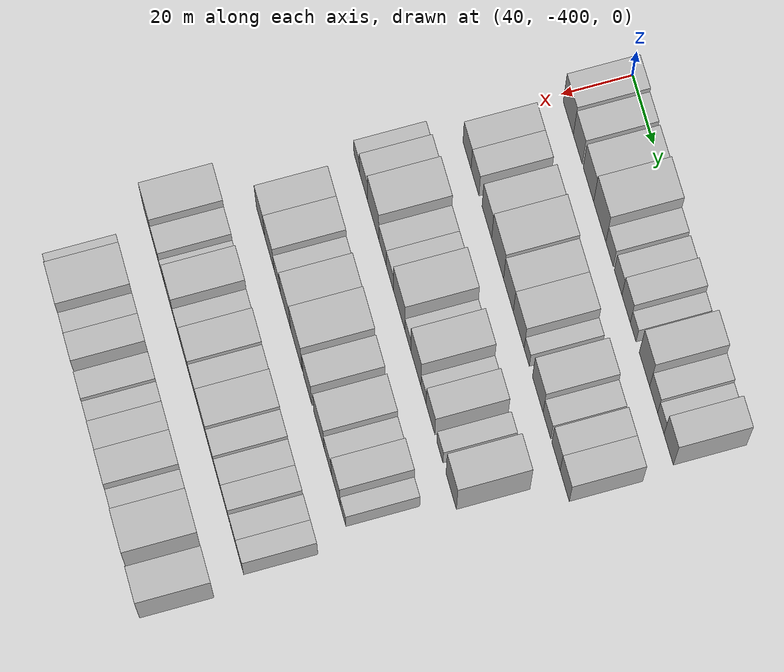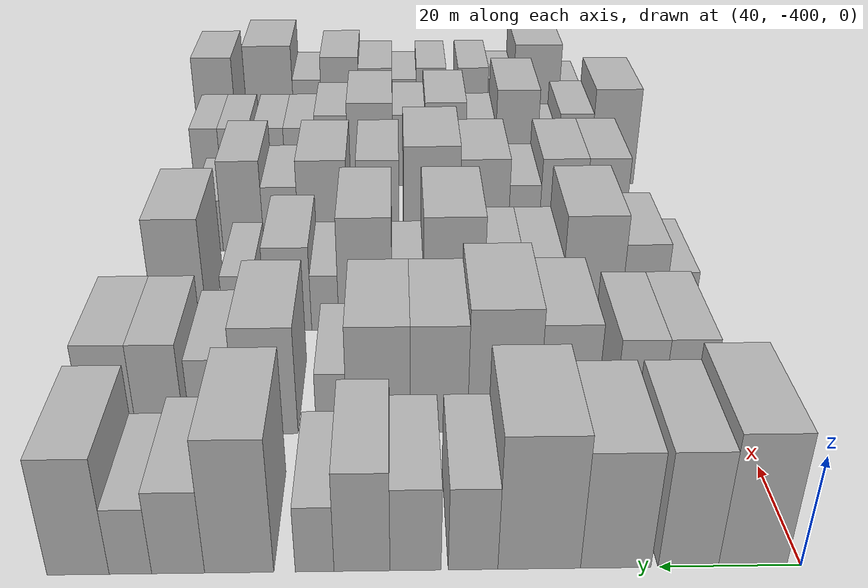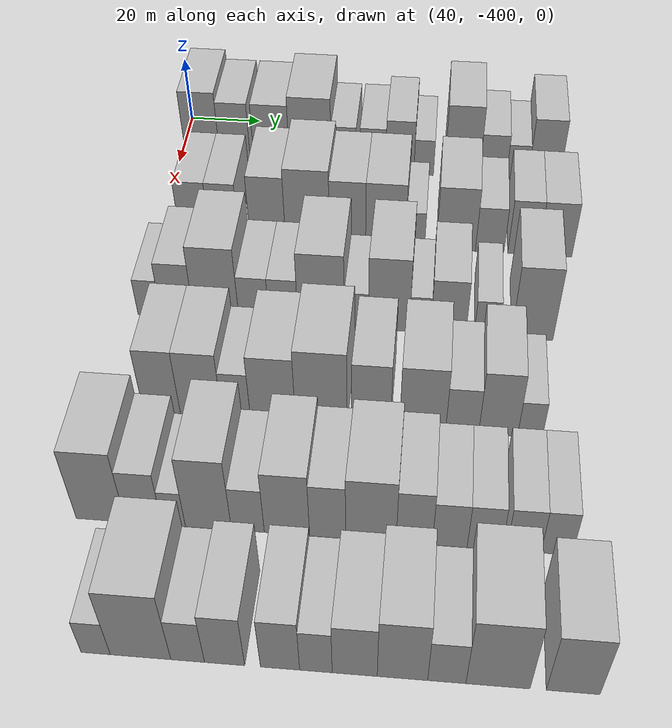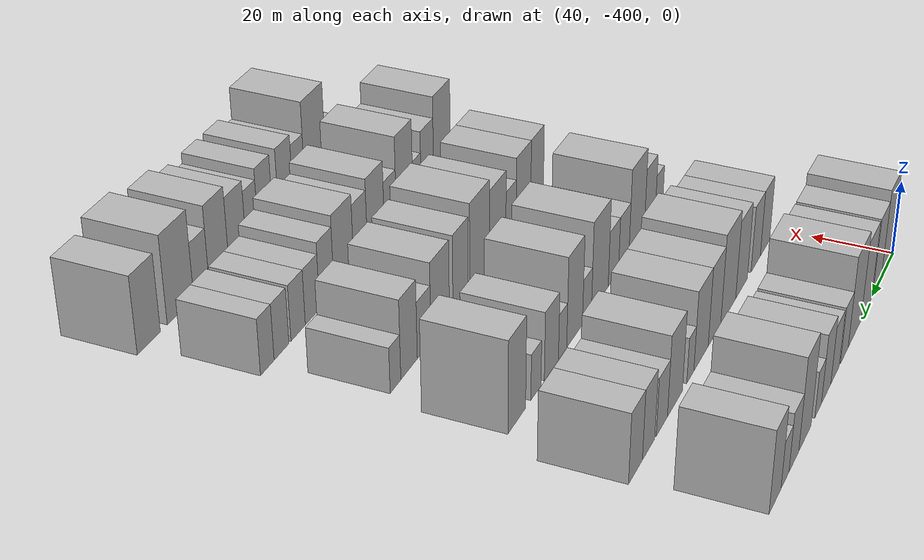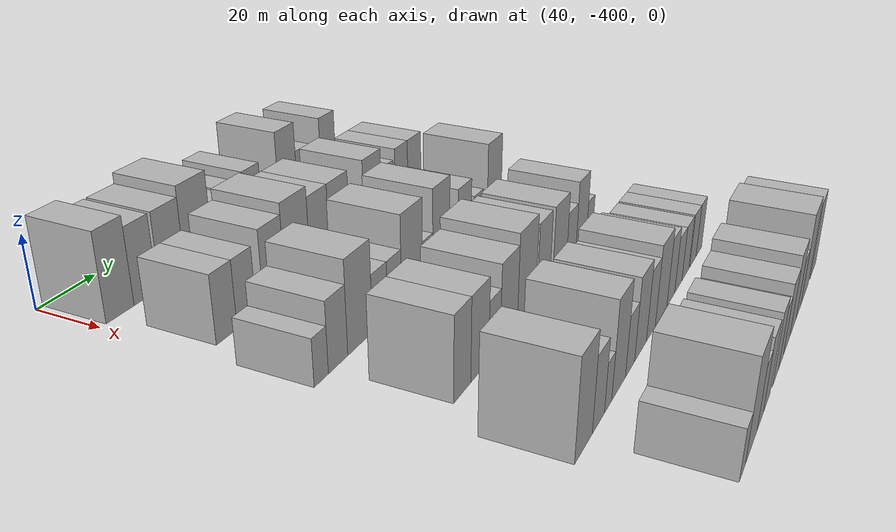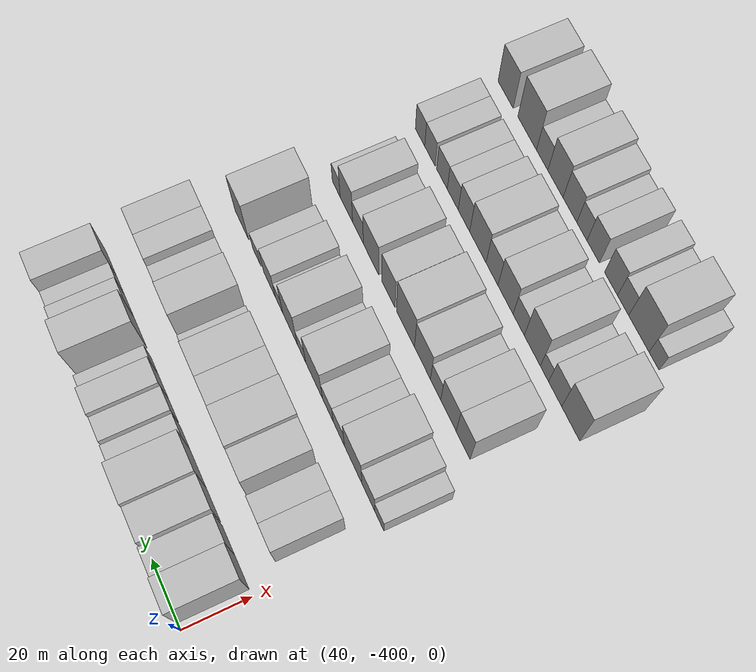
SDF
<sdf version="1.6">
 <world name="default">
  <model name="building_14">
   <static>1</static>
   <pose>50.0000 -393.1238 0 0.000000 0.000000 0.000000</pose>
   <link name="link">
    <pose>0 0 12.00 0 0 0</pose>
    <collision name="collision"><geometry><box><size>20.0000 9.6778 24.0000</size></box></geometry></collision>
    <visual name="visual">
     <cast_shadows>0</cast_shadows>
     <geometry><box><size>20.0000 9.6778 24.0000</size></box></geometry>
     <material>
      <script>
       <uri>model://HANNAS_wall/materials/scripts</uri>
       <uri>model://HANNAS_wall/materials/textures</uri>
       <name>vrc/HANNAS_wall</name>
      </script>
     </material>
    </visual>
   </link>
  </model>
  <model name="building_15">
   <static>1</static>
   <pose>50.0000 -384.0460 0 0.000000 0.000000 0.000000</pose>
   <link name="link">
    <pose>0 0 10.50 0 0 0</pose>
    <collision name="collision"><geometry><box><size>20.0000 8.4777 21.0000</size></box></geometry></collision>
    <visual name="visual">
     <cast_shadows>0</cast_shadows>
     <geometry><box><size>20.0000 8.4777 21.0000</size></box></geometry>
     <material>
      <script>
       <uri>model://HANNAS_wall/materials/scripts</uri>
       <uri>model://HANNAS_wall/materials/textures</uri>
       <name>vrc/HANNAS_wall</name>
      </script>
     </material>
    </visual>
   </link>
  </model>
  <model name="building_16">
   <static>1</static>
   <pose>50.0000 -373.8472 0 0.000000 0.000000 0.000000</pose>
   <link name="link">
    <pose>0 0 10.50 0 0 0</pose>
    <collision name="collision"><geometry><box><size>20.0000 9.9200 21.0000</size></box></geometry></collision>
    <visual name="visual">
     <cast_shadows>0</cast_shadows>
     <geometry><box><size>20.0000 9.9200 21.0000</size></box></geometry>
     <material>
      <script>
       <uri>model://HANNAS_wall/materials/scripts</uri>
       <uri>model://HANNAS_wall/materials/textures</uri>
       <name>vrc/HANNAS_wall</name>
      </script>
     </material>
    </visual>
   </link>
  </model>
  <model name="building_17">
   <static>1</static>
   <pose>50.0000 -363.0854 0 0.000000 0.000000 0.000000</pose>
   <link name="link">
    <pose>0 0 12.00 0 0 0</pose>
    <collision name="collision"><geometry><box><size>20.0000 11.6037 24.0000</size></box></geometry></collision>
    <visual name="visual">
     <cast_shadows>0</cast_shadows>
     <geometry><box><size>20.0000 11.6037 24.0000</size></box></geometry>
     <material>
      <script>
       <uri>model://HANNAS_wall/materials/scripts</uri>
       <uri>model://HANNAS_wall/materials/textures</uri>
       <name>vrc/HANNAS_wall</name>
      </script>
     </material>
    </visual>
   </link>
  </model>
  <model name="building_18">
   <static>1</static>
   <pose>50.0000 -353.8108 0 0.000000 0.000000 0.000000</pose>
   <link name="link">
    <pose>0 0 7.50 0 0 0</pose>
    <collision name="collision"><geometry><box><size>20.0000 6.9455 15.0000</size></box></geometry></collision>
    <visual name="visual">
     <cast_shadows>0</cast_shadows>
     <geometry><box><size>20.0000 6.9455 15.0000</size></box></geometry>
     <material>
      <script>
       <uri>model://HANNAS_wall/materials/scripts</uri>
       <uri>model://HANNAS_wall/materials/textures</uri>
       <name>vrc/HANNAS_wall</name>
      </script>
     </material>
    </visual>
   </link>
  </model>
  <model name="building_19">
   <static>1</static>
   <pose>50.0000 -345.7637 0 0.000000 0.000000 0.000000</pose>
   <link name="link">
    <pose>0 0 7.50 0 0 0</pose>
    <collision name="collision"><geometry><box><size>20.0000 7.1486 15.0000</size></box></geometry></collision>
    <visual name="visual">
     <cast_shadows>0</cast_shadows>
     <geometry><box><size>20.0000 7.1486 15.0000</size></box></geometry>
     <material>
      <script>
       <uri>model://HANNAS_wall/materials/scripts</uri>
       <uri>model://HANNAS_wall/materials/textures</uri>
       <name>vrc/HANNAS_wall</name>
      </script>
     </material>
    </visual>
   </link>
  </model>
  <model name="building_20">
   <static>1</static>
   <pose>50.0000 -338.2811 0 0.000000 0.000000 0.000000</pose>
   <link name="link">
    <pose>0 0 9.00 0 0 0</pose>
    <collision name="collision"><geometry><box><size>20.0000 7.8166 18.0000</size></box></geometry></collision>
    <visual name="visual">
     <cast_shadows>0</cast_shadows>
     <geometry><box><size>20.0000 7.8166 18.0000</size></box></geometry>
     <material>
      <script>
       <uri>model://HANNAS_wall/materials/scripts</uri>
       <uri>model://HANNAS_wall/materials/textures</uri>
       <name>vrc/HANNAS_wall</name>
      </script>
     </material>
    </visual>
   </link>
  </model>
  <model name="building_21">
   <static>1</static>
   <pose>50.0000 -331.6705 0 0.000000 0.000000 0.000000</pose>
   <link name="link">
    <pose>0 0 6.00 0 0 0</pose>
    <collision name="collision"><geometry><box><size>20.0000 5.4046 12.0000</size></box></geometry></collision>
    <visual name="visual">
     <cast_shadows>0</cast_shadows>
     <geometry><box><size>20.0000 5.4046 12.0000</size></box></geometry>
     <material>
      <script>
       <uri>model://HANNAS_wall/materials/scripts</uri>
       <uri>model://HANNAS_wall/materials/textures</uri>
       <name>vrc/HANNAS_wall</name>
      </script>
     </material>
    </visual>
   </link>
  </model>
  <model name="building_22">
   <static>1</static>
   <pose>50.0000 -321.1585 0 0.000000 0.000000 0.000000</pose>
   <link name="link">
    <pose>0 0 12.00 0 0 0</pose>
    <collision name="collision"><geometry><box><size>20.0000 9.6194 24.0000</size></box></geometry></collision>
    <visual name="visual">
     <cast_shadows>0</cast_shadows>
     <geometry><box><size>20.0000 9.6194 24.0000</size></box></geometry>
     <material>
      <script>
       <uri>model://HANNAS_wall/materials/scripts</uri>
       <uri>model://HANNAS_wall/materials/textures</uri>
       <name>vrc/HANNAS_wall</name>
      </script>
     </material>
    </visual>
   </link>
  </model>
  <model name="building_23">
   <static>1</static>
   <pose>50.0000 -312.6653 0 0.000000 0.000000 0.000000</pose>
   <link name="link">
    <pose>0 0 7.50 0 0 0</pose>
    <collision name="collision"><geometry><box><size>20.0000 7.3670 15.0000</size></box></geometry></collision>
    <visual name="visual">
     <cast_shadows>0</cast_shadows>
     <geometry><box><size>20.0000 7.3670 15.0000</size></box></geometry>
     <material>
      <script>
       <uri>model://HANNAS_wall/materials/scripts</uri>
       <uri>model://HANNAS_wall/materials/textures</uri>
       <name>vrc/HANNAS_wall</name>
      </script>
     </material>
    </visual>
   </link>
  </model>
  <model name="building_24">
   <static>1</static>
   <pose>50.0000 -306.0284 0 0.000000 0.000000 0.000000</pose>
   <link name="link">
    <pose>0 0 6.00 0 0 0</pose>
    <collision name="collision"><geometry><box><size>20.0000 5.9067 12.0000</size></box></geometry></collision>
    <visual name="visual">
     <cast_shadows>0</cast_shadows>
     <geometry><box><size>20.0000 5.9067 12.0000</size></box></geometry>
     <material>
      <script>
       <uri>model://HANNAS_wall/materials/scripts</uri>
       <uri>model://HANNAS_wall/materials/textures</uri>
       <name>vrc/HANNAS_wall</name>
      </script>
     </material>
    </visual>
   </link>
  </model>
  <model name="building_25">
   <static>1</static>
   <pose>50.0000 -298.7653 0 0.000000 0.000000 0.000000</pose>
   <link name="link">
    <pose>0 0 10.50 0 0 0</pose>
    <collision name="collision"><geometry><box><size>20.0000 8.6196 21.0000</size></box></geometry></collision>
    <visual name="visual">
     <cast_shadows>0</cast_shadows>
     <geometry><box><size>20.0000 8.6196 21.0000</size></box></geometry>
     <material>
      <script>
       <uri>model://HANNAS_wall/materials/scripts</uri>
       <uri>model://HANNAS_wall/materials/textures</uri>
       <name>vrc/HANNAS_wall</name>
      </script>
     </material>
    </visual>
   </link>
  </model>
  <model name="building_132">
   <static>1</static>
   <pose>79.0000 -390.3582 0 0.000000 0.000000 0.000000</pose>
   <link name="link">
    <pose>0 0 9.00 0 0 0</pose>
    <collision name="collision"><geometry><box><size>20.0000 7.9021 18.0000</size></box></geometry></collision>
    <visual name="visual">
     <cast_shadows>0</cast_shadows>
     <geometry><box><size>20.0000 7.9021 18.0000</size></box></geometry>
     <material>
      <script>
       <uri>model://HANNAS_wall/materials/scripts</uri>
       <uri>model://HANNAS_wall/materials/textures</uri>
       <name>vrc/HANNAS_wall</name>
      </script>
     </material>
    </visual>
   </link>
  </model>
  <model name="building_133">
   <static>1</static>
   <pose>79.0000 -382.5551 0 0.000000 0.000000 0.000000</pose>
   <link name="link">
    <pose>0 0 9.00 0 0 0</pose>
    <collision name="collision"><geometry><box><size>20.0000 7.7041 18.0000</size></box></geometry></collision>
    <visual name="visual">
     <cast_shadows>0</cast_shadows>
     <geometry><box><size>20.0000 7.7041 18.0000</size></box></geometry>
     <material>
      <script>
       <uri>model://HANNAS_wall/materials/scripts</uri>
       <uri>model://HANNAS_wall/materials/textures</uri>
       <name>vrc/HANNAS_wall</name>
      </script>
     </material>
    </visual>
   </link>
  </model>
  <model name="building_134">
   <static>1</static>
   <pose>79.0000 -371.0360 0 0.000000 0.000000 0.000000</pose>
   <link name="link">
    <pose>0 0 10.50 0 0 0</pose>
    <collision name="collision"><geometry><box><size>20.0000 9.3340 21.0000</size></box></geometry></collision>
    <visual name="visual">
     <cast_shadows>0</cast_shadows>
     <geometry><box><size>20.0000 9.3340 21.0000</size></box></geometry>
     <material>
      <script>
       <uri>model://HANNAS_wall/materials/scripts</uri>
       <uri>model://HANNAS_wall/materials/textures</uri>
       <name>vrc/HANNAS_wall</name>
      </script>
     </material>
    </visual>
   </link>
  </model>
  <model name="building_135">
   <static>1</static>
   <pose>79.0000 -360.6052 0 0.000000 0.000000 0.000000</pose>
   <link name="link">
    <pose>0 0 12.00 0 0 0</pose>
    <collision name="collision"><geometry><box><size>20.0000 11.5275 24.0000</size></box></geometry></collision>
    <visual name="visual">
     <cast_shadows>0</cast_shadows>
     <geometry><box><size>20.0000 11.5275 24.0000</size></box></geometry>
     <material>
      <script>
       <uri>model://HANNAS_wall/materials/scripts</uri>
       <uri>model://HANNAS_wall/materials/textures</uri>
       <name>vrc/HANNAS_wall</name>
      </script>
     </material>
    </visual>
   </link>
  </model>
  <model name="building_136">
   <static>1</static>
   <pose>79.0000 -350.1596 0 0.000000 0.000000 0.000000</pose>
   <link name="link">
    <pose>0 0 10.50 0 0 0</pose>
    <collision name="collision"><geometry><box><size>20.0000 9.3638 21.0000</size></box></geometry></collision>
    <visual name="visual">
     <cast_shadows>0</cast_shadows>
     <geometry><box><size>20.0000 9.3638 21.0000</size></box></geometry>
     <material>
      <script>
       <uri>model://HANNAS_wall/materials/scripts</uri>
       <uri>model://HANNAS_wall/materials/textures</uri>
       <name>vrc/HANNAS_wall</name>
      </script>
     </material>
    </visual>
   </link>
  </model>
  <model name="building_137">
   <static>1</static>
   <pose>79.0000 -340.3080 0 0.000000 0.000000 0.000000</pose>
   <link name="link">
    <pose>0 0 10.50 0 0 0</pose>
    <collision name="collision"><geometry><box><size>20.0000 10.3393 21.0000</size></box></geometry></collision>
    <visual name="visual">
     <cast_shadows>0</cast_shadows>
     <geometry><box><size>20.0000 10.3393 21.0000</size></box></geometry>
     <material>
      <script>
       <uri>model://HANNAS_wall/materials/scripts</uri>
       <uri>model://HANNAS_wall/materials/textures</uri>
       <name>vrc/HANNAS_wall</name>
      </script>
     </material>
    </visual>
   </link>
  </model>
  <model name="building_138">
   <static>1</static>
   <pose>79.0000 -332.6651 0 0.000000 0.000000 0.000000</pose>
   <link name="link">
    <pose>0 0 6.00 0 0 0</pose>
    <collision name="collision"><geometry><box><size>20.0000 4.9464 12.0000</size></box></geometry></collision>
    <visual name="visual">
     <cast_shadows>0</cast_shadows>
     <geometry><box><size>20.0000 4.9464 12.0000</size></box></geometry>
     <material>
      <script>
       <uri>model://HANNAS_wall/materials/scripts</uri>
       <uri>model://HANNAS_wall/materials/textures</uri>
       <name>vrc/HANNAS_wall</name>
      </script>
     </material>
    </visual>
   </link>
  </model>
  <model name="building_139">
   <static>1</static>
   <pose>79.0000 -322.1463 0 0.000000 0.000000 0.000000</pose>
   <link name="link">
    <pose>0 0 10.50 0 0 0</pose>
    <collision name="collision"><geometry><box><size>20.0000 10.0912 21.0000</size></box></geometry></collision>
    <visual name="visual">
     <cast_shadows>0</cast_shadows>
     <geometry><box><size>20.0000 10.0912 21.0000</size></box></geometry>
     <material>
      <script>
       <uri>model://HANNAS_wall/materials/scripts</uri>
       <uri>model://HANNAS_wall/materials/textures</uri>
       <name>vrc/HANNAS_wall</name>
      </script>
     </material>
    </visual>
   </link>
  </model>
  <model name="building_140">
   <static>1</static>
   <pose>79.0000 -313.4444 0 0.000000 0.000000 0.000000</pose>
   <link name="link">
    <pose>0 0 7.50 0 0 0</pose>
    <collision name="collision"><geometry><box><size>20.0000 7.3126 15.0000</size></box></geometry></collision>
    <visual name="visual">
     <cast_shadows>0</cast_shadows>
     <geometry><box><size>20.0000 7.3126 15.0000</size></box></geometry>
     <material>
      <script>
       <uri>model://HANNAS_wall/materials/scripts</uri>
       <uri>model://HANNAS_wall/materials/textures</uri>
       <name>vrc/HANNAS_wall</name>
      </script>
     </material>
    </visual>
   </link>
  </model>
  <model name="building_141">
   <static>1</static>
   <pose>79.0000 -304.8886 0 0.000000 0.000000 0.000000</pose>
   <link name="link">
    <pose>0 0 9.00 0 0 0</pose>
    <collision name="collision"><geometry><box><size>20.0000 7.7990 18.0000</size></box></geometry></collision>
    <visual name="visual">
     <cast_shadows>0</cast_shadows>
     <geometry><box><size>20.0000 7.7990 18.0000</size></box></geometry>
     <material>
      <script>
       <uri>model://HANNAS_wall/materials/scripts</uri>
       <uri>model://HANNAS_wall/materials/textures</uri>
       <name>vrc/HANNAS_wall</name>
      </script>
     </material>
    </visual>
   </link>
  </model>
  <model name="building_142">
   <static>1</static>
   <pose>79.0000 -296.7094 0 0.000000 0.000000 0.000000</pose>
   <link name="link">
    <pose>0 0 9.00 0 0 0</pose>
    <collision name="collision"><geometry><box><size>20.0000 8.5593 18.0000</size></box></geometry></collision>
    <visual name="visual">
     <cast_shadows>0</cast_shadows>
     <geometry><box><size>20.0000 8.5593 18.0000</size></box></geometry>
     <material>
      <script>
       <uri>model://HANNAS_wall/materials/scripts</uri>
       <uri>model://HANNAS_wall/materials/textures</uri>
       <name>vrc/HANNAS_wall</name>
      </script>
     </material>
    </visual>
   </link>
  </model>
  <model name="building_243">
   <static>1</static>
   <pose>108.0000 -396.1447 0 0.000000 0.000000 0.000000</pose>
   <link name="link">
    <pose>0 0 6.00 0 0 0</pose>
    <collision name="collision"><geometry><box><size>20.0000 5.7117 12.0000</size></box></geometry></collision>
    <visual name="visual">
     <cast_shadows>0</cast_shadows>
     <geometry><box><size>20.0000 5.7117 12.0000</size></box></geometry>
     <material>
      <script>
       <uri>model://HANNAS_wall/materials/scripts</uri>
       <uri>model://HANNAS_wall/materials/textures</uri>
       <name>vrc/HANNAS_wall</name>
      </script>
     </material>
    </visual>
   </link>
  </model>
  <model name="building_244">
   <static>1</static>
   <pose>108.0000 -389.2160 0 0.000000 0.000000 0.000000</pose>
   <link name="link">
    <pose>0 0 9.00 0 0 0</pose>
    <collision name="collision"><geometry><box><size>20.0000 8.1458 18.0000</size></box></geometry></collision>
    <visual name="visual">
     <cast_shadows>0</cast_shadows>
     <geometry><box><size>20.0000 8.1458 18.0000</size></box></geometry>
     <material>
      <script>
       <uri>model://HANNAS_wall/materials/scripts</uri>
       <uri>model://HANNAS_wall/materials/textures</uri>
       <name>vrc/HANNAS_wall</name>
      </script>
     </material>
    </visual>
   </link>
  </model>
  <model name="building_245">
   <static>1</static>
   <pose>108.0000 -379.5825 0 0.000000 0.000000 0.000000</pose>
   <link name="link">
    <pose>0 0 12.00 0 0 0</pose>
    <collision name="collision"><geometry><box><size>20.0000 11.1211 24.0000</size></box></geometry></collision>
    <visual name="visual">
     <cast_shadows>0</cast_shadows>
     <geometry><box><size>20.0000 11.1211 24.0000</size></box></geometry>
     <material>
      <script>
       <uri>model://HANNAS_wall/materials/scripts</uri>
       <uri>model://HANNAS_wall/materials/textures</uri>
       <name>vrc/HANNAS_wall</name>
      </script>
     </material>
    </visual>
   </link>
  </model>
  <model name="building_246">
   <static>1</static>
   <pose>108.0000 -370.3737 0 0.000000 0.000000 0.000000</pose>
   <link name="link">
    <pose>0 0 7.50 0 0 0</pose>
    <collision name="collision"><geometry><box><size>20.0000 7.2964 15.0000</size></box></geometry></collision>
    <visual name="visual">
     <cast_shadows>0</cast_shadows>
     <geometry><box><size>20.0000 7.2964 15.0000</size></box></geometry>
     <material>
      <script>
       <uri>model://HANNAS_wall/materials/scripts</uri>
       <uri>model://HANNAS_wall/materials/textures</uri>
       <name>vrc/HANNAS_wall</name>
      </script>
     </material>
    </visual>
   </link>
  </model>
  <model name="building_247">
   <static>1</static>
   <pose>108.0000 -363.1822 0 0.000000 0.000000 0.000000</pose>
   <link name="link">
    <pose>0 0 7.50 0 0 0</pose>
    <collision name="collision"><geometry><box><size>20.0000 7.0866 15.0000</size></box></geometry></collision>
    <visual name="visual">
     <cast_shadows>0</cast_shadows>
     <geometry><box><size>20.0000 7.0866 15.0000</size></box></geometry>
     <material>
      <script>
       <uri>model://HANNAS_wall/materials/scripts</uri>
       <uri>model://HANNAS_wall/materials/textures</uri>
       <name>vrc/HANNAS_wall</name>
      </script>
     </material>
    </visual>
   </link>
  </model>
  <model name="building_248">
   <static>1</static>
   <pose>108.0000 -354.0282 0 0.000000 0.000000 0.000000</pose>
   <link name="link">
    <pose>0 0 12.00 0 0 0</pose>
    <collision name="collision"><geometry><box><size>20.0000 11.2215 24.0000</size></box></geometry></collision>
    <visual name="visual">
     <cast_shadows>0</cast_shadows>
     <geometry><box><size>20.0000 11.2215 24.0000</size></box></geometry>
     <material>
      <script>
       <uri>model://HANNAS_wall/materials/scripts</uri>
       <uri>model://HANNAS_wall/materials/textures</uri>
       <name>vrc/HANNAS_wall</name>
      </script>
     </material>
    </visual>
   </link>
  </model>
  <model name="building_249">
   <static>1</static>
   <pose>108.0000 -345.5084 0 0.000000 0.000000 0.000000</pose>
   <link name="link">
    <pose>0 0 6.00 0 0 0</pose>
    <collision name="collision"><geometry><box><size>20.0000 5.8181 12.0000</size></box></geometry></collision>
    <visual name="visual">
     <cast_shadows>0</cast_shadows>
     <geometry><box><size>20.0000 5.8181 12.0000</size></box></geometry>
     <material>
      <script>
       <uri>model://HANNAS_wall/materials/scripts</uri>
       <uri>model://HANNAS_wall/materials/textures</uri>
       <name>vrc/HANNAS_wall</name>
      </script>
     </material>
    </visual>
   </link>
  </model>
  <model name="building_250">
   <static>1</static>
   <pose>108.0000 -337.6272 0 0.000000 0.000000 0.000000</pose>
   <link name="link">
    <pose>0 0 12.00 0 0 0</pose>
    <collision name="collision"><geometry><box><size>20.0000 9.9443 24.0000</size></box></geometry></collision>
    <visual name="visual">
     <cast_shadows>0</cast_shadows>
     <geometry><box><size>20.0000 9.9443 24.0000</size></box></geometry>
     <material>
      <script>
       <uri>model://HANNAS_wall/materials/scripts</uri>
       <uri>model://HANNAS_wall/materials/textures</uri>
       <name>vrc/HANNAS_wall</name>
      </script>
     </material>
    </visual>
   </link>
  </model>
  <model name="building_251">
   <static>1</static>
   <pose>108.0000 -330.1143 0 0.000000 0.000000 0.000000</pose>
   <link name="link">
    <pose>0 0 6.00 0 0 0</pose>
    <collision name="collision"><geometry><box><size>20.0000 5.0816 12.0000</size></box></geometry></collision>
    <visual name="visual">
     <cast_shadows>0</cast_shadows>
     <geometry><box><size>20.0000 5.0816 12.0000</size></box></geometry>
     <material>
      <script>
       <uri>model://HANNAS_wall/materials/scripts</uri>
       <uri>model://HANNAS_wall/materials/textures</uri>
       <name>vrc/HANNAS_wall</name>
      </script>
     </material>
    </visual>
   </link>
  </model>
  <model name="building_252">
   <static>1</static>
   <pose>108.0000 -323.3309 0 0.000000 0.000000 0.000000</pose>
   <link name="link">
    <pose>0 0 9.00 0 0 0</pose>
    <collision name="collision"><geometry><box><size>20.0000 8.4852 18.0000</size></box></geometry></collision>
    <visual name="visual">
     <cast_shadows>0</cast_shadows>
     <geometry><box><size>20.0000 8.4852 18.0000</size></box></geometry>
     <material>
      <script>
       <uri>model://HANNAS_wall/materials/scripts</uri>
       <uri>model://HANNAS_wall/materials/textures</uri>
       <name>vrc/HANNAS_wall</name>
      </script>
     </material>
    </visual>
   </link>
  </model>
  <model name="building_253">
   <static>1</static>
   <pose>108.0000 -314.1615 0 0.000000 0.000000 0.000000</pose>
   <link name="link">
    <pose>0 0 6.00 0 0 0</pose>
    <collision name="collision"><geometry><box><size>20.0000 5.8535 12.0000</size></box></geometry></collision>
    <visual name="visual">
     <cast_shadows>0</cast_shadows>
     <geometry><box><size>20.0000 5.8535 12.0000</size></box></geometry>
     <material>
      <script>
       <uri>model://HANNAS_wall/materials/scripts</uri>
       <uri>model://HANNAS_wall/materials/textures</uri>
       <name>vrc/HANNAS_wall</name>
      </script>
     </material>
    </visual>
   </link>
  </model>
  <model name="building_254">
   <static>1</static>
   <pose>108.0000 -303.2750 0 0.000000 0.000000 0.000000</pose>
   <link name="link">
    <pose>0 0 12.00 0 0 0</pose>
    <collision name="collision"><geometry><box><size>20.0000 9.9197 24.0000</size></box></geometry></collision>
    <visual name="visual">
     <cast_shadows>0</cast_shadows>
     <geometry><box><size>20.0000 9.9197 24.0000</size></box></geometry>
     <material>
      <script>
       <uri>model://HANNAS_wall/materials/scripts</uri>
       <uri>model://HANNAS_wall/materials/textures</uri>
       <name>vrc/HANNAS_wall</name>
      </script>
     </material>
    </visual>
   </link>
  </model>
  <model name="building_358">
   <static>1</static>
   <pose>137.0000 -387.1848 0 0.000000 0.000000 0.000000</pose>
   <link name="link">
    <pose>0 0 10.50 0 0 0</pose>
    <collision name="collision"><geometry><box><size>20.0000 8.4920 21.0000</size></box></geometry></collision>
    <visual name="visual">
     <cast_shadows>0</cast_shadows>
     <geometry><box><size>20.0000 8.4920 21.0000</size></box></geometry>
     <material>
      <script>
       <uri>model://HANNAS_wall/materials/scripts</uri>
       <uri>model://HANNAS_wall/materials/textures</uri>
       <name>vrc/HANNAS_wall</name>
      </script>
     </material>
    </visual>
   </link>
  </model>
  <model name="building_359">
   <static>1</static>
   <pose>137.0000 -378.1749 0 0.000000 0.000000 0.000000</pose>
   <link name="link">
    <pose>0 0 10.50 0 0 0</pose>
    <collision name="collision"><geometry><box><size>20.0000 9.5279 21.0000</size></box></geometry></collision>
    <visual name="visual">
     <cast_shadows>0</cast_shadows>
     <geometry><box><size>20.0000 9.5279 21.0000</size></box></geometry>
     <material>
      <script>
       <uri>model://HANNAS_wall/materials/scripts</uri>
       <uri>model://HANNAS_wall/materials/textures</uri>
       <name>vrc/HANNAS_wall</name>
      </script>
     </material>
    </visual>
   </link>
  </model>
  <model name="building_360">
   <static>1</static>
   <pose>137.0000 -370.1846 0 0.000000 0.000000 0.000000</pose>
   <link name="link">
    <pose>0 0 7.50 0 0 0</pose>
    <collision name="collision"><geometry><box><size>20.0000 6.4526 15.0000</size></box></geometry></collision>
    <visual name="visual">
     <cast_shadows>0</cast_shadows>
     <geometry><box><size>20.0000 6.4526 15.0000</size></box></geometry>
     <material>
      <script>
       <uri>model://HANNAS_wall/materials/scripts</uri>
       <uri>model://HANNAS_wall/materials/textures</uri>
       <name>vrc/HANNAS_wall</name>
      </script>
     </material>
    </visual>
   </link>
  </model>
  <model name="building_361">
   <static>1</static>
   <pose>137.0000 -361.8557 0 0.000000 0.000000 0.000000</pose>
   <link name="link">
    <pose>0 0 10.50 0 0 0</pose>
    <collision name="collision"><geometry><box><size>20.0000 10.2051 21.0000</size></box></geometry></collision>
    <visual name="visual">
     <cast_shadows>0</cast_shadows>
     <geometry><box><size>20.0000 10.2051 21.0000</size></box></geometry>
     <material>
      <script>
       <uri>model://HANNAS_wall/materials/scripts</uri>
       <uri>model://HANNAS_wall/materials/textures</uri>
       <name>vrc/HANNAS_wall</name>
      </script>
     </material>
    </visual>
   </link>
  </model>
  <model name="building_362">
   <static>1</static>
   <pose>137.0000 -350.9374 0 0.000000 0.000000 0.000000</pose>
   <link name="link">
    <pose>0 0 12.00 0 0 0</pose>
    <collision name="collision"><geometry><box><size>20.0000 11.6315 24.0000</size></box></geometry></collision>
    <visual name="visual">
     <cast_shadows>0</cast_shadows>
     <geometry><box><size>20.0000 11.6315 24.0000</size></box></geometry>
     <material>
      <script>
       <uri>model://HANNAS_wall/materials/scripts</uri>
       <uri>model://HANNAS_wall/materials/textures</uri>
       <name>vrc/HANNAS_wall</name>
      </script>
     </material>
    </visual>
   </link>
  </model>
  <model name="building_363">
   <static>1</static>
   <pose>137.0000 -339.7445 0 0.000000 0.000000 0.000000</pose>
   <link name="link">
    <pose>0 0 10.50 0 0 0</pose>
    <collision name="collision"><geometry><box><size>20.0000 8.7543 21.0000</size></box></geometry></collision>
    <visual name="visual">
     <cast_shadows>0</cast_shadows>
     <geometry><box><size>20.0000 8.7543 21.0000</size></box></geometry>
     <material>
      <script>
       <uri>model://HANNAS_wall/materials/scripts</uri>
       <uri>model://HANNAS_wall/materials/textures</uri>
       <name>vrc/HANNAS_wall</name>
      </script>
     </material>
    </visual>
   </link>
  </model>
  <model name="building_364">
   <static>1</static>
   <pose>137.0000 -328.2360 0 0.000000 0.000000 0.000000</pose>
   <link name="link">
    <pose>0 0 10.50 0 0 0</pose>
    <collision name="collision"><geometry><box><size>20.0000 10.2626 21.0000</size></box></geometry></collision>
    <visual name="visual">
     <cast_shadows>0</cast_shadows>
     <geometry><box><size>20.0000 10.2626 21.0000</size></box></geometry>
     <material>
      <script>
       <uri>model://HANNAS_wall/materials/scripts</uri>
       <uri>model://HANNAS_wall/materials/textures</uri>
       <name>vrc/HANNAS_wall</name>
      </script>
     </material>
    </visual>
   </link>
  </model>
  <model name="building_365">
   <static>1</static>
   <pose>137.0000 -319.4358 0 0.000000 0.000000 0.000000</pose>
   <link name="link">
    <pose>0 0 7.50 0 0 0</pose>
    <collision name="collision"><geometry><box><size>20.0000 7.3378 15.0000</size></box></geometry></collision>
    <visual name="visual">
     <cast_shadows>0</cast_shadows>
     <geometry><box><size>20.0000 7.3378 15.0000</size></box></geometry>
     <material>
      <script>
       <uri>model://HANNAS_wall/materials/scripts</uri>
       <uri>model://HANNAS_wall/materials/textures</uri>
       <name>vrc/HANNAS_wall</name>
      </script>
     </material>
    </visual>
   </link>
  </model>
  <model name="building_366">
   <static>1</static>
   <pose>137.0000 -311.4550 0 0.000000 0.000000 0.000000</pose>
   <link name="link">
    <pose>0 0 10.50 0 0 0</pose>
    <collision name="collision"><geometry><box><size>20.0000 8.6240 21.0000</size></box></geometry></collision>
    <visual name="visual">
     <cast_shadows>0</cast_shadows>
     <geometry><box><size>20.0000 8.6240 21.0000</size></box></geometry>
     <material>
      <script>
       <uri>model://HANNAS_wall/materials/scripts</uri>
       <uri>model://HANNAS_wall/materials/textures</uri>
       <name>vrc/HANNAS_wall</name>
      </script>
     </material>
    </visual>
   </link>
  </model>
  <model name="building_367">
   <static>1</static>
   <pose>137.0000 -304.4146 0 0.000000 0.000000 0.000000</pose>
   <link name="link">
    <pose>0 0 6.00 0 0 0</pose>
    <collision name="collision"><geometry><box><size>20.0000 5.4567 12.0000</size></box></geometry></collision>
    <visual name="visual">
     <cast_shadows>0</cast_shadows>
     <geometry><box><size>20.0000 5.4567 12.0000</size></box></geometry>
     <material>
      <script>
       <uri>model://HANNAS_wall/materials/scripts</uri>
       <uri>model://HANNAS_wall/materials/textures</uri>
       <name>vrc/HANNAS_wall</name>
      </script>
     </material>
    </visual>
   </link>
  </model>
  <model name="building_480">
   <static>1</static>
   <pose>166.0000 -394.1213 0 0.000000 0.000000 0.000000</pose>
   <link name="link">
    <pose>0 0 12.00 0 0 0</pose>
    <collision name="collision"><geometry><box><size>20.0000 10.5147 24.0000</size></box></geometry></collision>
    <visual name="visual">
     <cast_shadows>0</cast_shadows>
     <geometry><box><size>20.0000 10.5147 24.0000</size></box></geometry>
     <material>
      <script>
       <uri>model://HANNAS_wall/materials/scripts</uri>
       <uri>model://HANNAS_wall/materials/textures</uri>
       <name>vrc/HANNAS_wall</name>
      </script>
     </material>
    </visual>
   </link>
  </model>
  <model name="building_481">
   <static>1</static>
   <pose>166.0000 -385.0118 0 0.000000 0.000000 0.000000</pose>
   <link name="link">
    <pose>0 0 9.00 0 0 0</pose>
    <collision name="collision"><geometry><box><size>20.0000 7.7043 18.0000</size></box></geometry></collision>
    <visual name="visual">
     <cast_shadows>0</cast_shadows>
     <geometry><box><size>20.0000 7.7043 18.0000</size></box></geometry>
     <material>
      <script>
       <uri>model://HANNAS_wall/materials/scripts</uri>
       <uri>model://HANNAS_wall/materials/textures</uri>
       <name>vrc/HANNAS_wall</name>
      </script>
     </material>
    </visual>
   </link>
  </model>
  <model name="building_482">
   <static>1</static>
   <pose>166.0000 -378.7208 0 0.000000 0.000000 0.000000</pose>
   <link name="link">
    <pose>0 0 6.00 0 0 0</pose>
    <collision name="collision"><geometry><box><size>20.0000 4.8776 12.0000</size></box></geometry></collision>
    <visual name="visual">
     <cast_shadows>0</cast_shadows>
     <geometry><box><size>20.0000 4.8776 12.0000</size></box></geometry>
     <material>
      <script>
       <uri>model://HANNAS_wall/materials/scripts</uri>
       <uri>model://HANNAS_wall/materials/textures</uri>
       <name>vrc/HANNAS_wall</name>
      </script>
     </material>
    </visual>
   </link>
  </model>
  <model name="building_483">
   <static>1</static>
   <pose>166.0000 -371.4358 0 0.000000 0.000000 0.000000</pose>
   <link name="link">
    <pose>0 0 12.00 0 0 0</pose>
    <collision name="collision"><geometry><box><size>20.0000 9.6923 24.0000</size></box></geometry></collision>
    <visual name="visual">
     <cast_shadows>0</cast_shadows>
     <geometry><box><size>20.0000 9.6923 24.0000</size></box></geometry>
     <material>
      <script>
       <uri>model://HANNAS_wall/materials/scripts</uri>
       <uri>model://HANNAS_wall/materials/textures</uri>
       <name>vrc/HANNAS_wall</name>
      </script>
     </material>
    </visual>
   </link>
  </model>
  <model name="building_484">
   <static>1</static>
   <pose>166.0000 -363.1648 0 0.000000 0.000000 0.000000</pose>
   <link name="link">
    <pose>0 0 7.50 0 0 0</pose>
    <collision name="collision"><geometry><box><size>20.0000 6.8496 15.0000</size></box></geometry></collision>
    <visual name="visual">
     <cast_shadows>0</cast_shadows>
     <geometry><box><size>20.0000 6.8496 15.0000</size></box></geometry>
     <material>
      <script>
       <uri>model://HANNAS_wall/materials/scripts</uri>
       <uri>model://HANNAS_wall/materials/textures</uri>
       <name>vrc/HANNAS_wall</name>
      </script>
     </material>
    </visual>
   </link>
  </model>
  <model name="building_485">
   <static>1</static>
   <pose>166.0000 -355.0323 0 0.000000 0.000000 0.000000</pose>
   <link name="link">
    <pose>0 0 10.50 0 0 0</pose>
    <collision name="collision"><geometry><box><size>20.0000 9.4154 21.0000</size></box></geometry></collision>
    <visual name="visual">
     <cast_shadows>0</cast_shadows>
     <geometry><box><size>20.0000 9.4154 21.0000</size></box></geometry>
     <material>
      <script>
       <uri>model://HANNAS_wall/materials/scripts</uri>
       <uri>model://HANNAS_wall/materials/textures</uri>
       <name>vrc/HANNAS_wall</name>
      </script>
     </material>
    </visual>
   </link>
  </model>
  <model name="building_486">
   <static>1</static>
   <pose>166.0000 -346.5794 0 0.000000 0.000000 0.000000</pose>
   <link name="link">
    <pose>0 0 9.00 0 0 0</pose>
    <collision name="collision"><geometry><box><size>20.0000 7.4904 18.0000</size></box></geometry></collision>
    <visual name="visual">
     <cast_shadows>0</cast_shadows>
     <geometry><box><size>20.0000 7.4904 18.0000</size></box></geometry>
     <material>
      <script>
       <uri>model://HANNAS_wall/materials/scripts</uri>
       <uri>model://HANNAS_wall/materials/textures</uri>
       <name>vrc/HANNAS_wall</name>
      </script>
     </material>
    </visual>
   </link>
  </model>
  <model name="building_487">
   <static>1</static>
   <pose>166.0000 -337.6298 0 0.000000 0.000000 0.000000</pose>
   <link name="link">
    <pose>0 0 10.50 0 0 0</pose>
    <collision name="collision"><geometry><box><size>20.0000 10.4087 21.0000</size></box></geometry></collision>
    <visual name="visual">
     <cast_shadows>0</cast_shadows>
     <geometry><box><size>20.0000 10.4087 21.0000</size></box></geometry>
     <material>
      <script>
       <uri>model://HANNAS_wall/materials/scripts</uri>
       <uri>model://HANNAS_wall/materials/textures</uri>
       <name>vrc/HANNAS_wall</name>
      </script>
     </material>
    </visual>
   </link>
  </model>
  <model name="building_488">
   <static>1</static>
   <pose>166.0000 -328.7156 0 0.000000 0.000000 0.000000</pose>
   <link name="link">
    <pose>0 0 9.00 0 0 0</pose>
    <collision name="collision"><geometry><box><size>20.0000 7.4198 18.0000</size></box></geometry></collision>
    <visual name="visual">
     <cast_shadows>0</cast_shadows>
     <geometry><box><size>20.0000 7.4198 18.0000</size></box></geometry>
     <material>
      <script>
       <uri>model://HANNAS_wall/materials/scripts</uri>
       <uri>model://HANNAS_wall/materials/textures</uri>
       <name>vrc/HANNAS_wall</name>
      </script>
     </material>
    </visual>
   </link>
  </model>
  <model name="building_489">
   <static>1</static>
   <pose>166.0000 -321.4346 0 0.000000 0.000000 0.000000</pose>
   <link name="link">
    <pose>0 0 7.50 0 0 0</pose>
    <collision name="collision"><geometry><box><size>20.0000 7.1422 15.0000</size></box></geometry></collision>
    <visual name="visual">
     <cast_shadows>0</cast_shadows>
     <geometry><box><size>20.0000 7.1422 15.0000</size></box></geometry>
     <material>
      <script>
       <uri>model://HANNAS_wall/materials/scripts</uri>
       <uri>model://HANNAS_wall/materials/textures</uri>
       <name>vrc/HANNAS_wall</name>
      </script>
     </material>
    </visual>
   </link>
  </model>
  <model name="building_490">
   <static>1</static>
   <pose>166.0000 -314.3577 0 0.000000 0.000000 0.000000</pose>
   <link name="link">
    <pose>0 0 7.50 0 0 0</pose>
    <collision name="collision"><geometry><box><size>20.0000 7.0116 15.0000</size></box></geometry></collision>
    <visual name="visual">
     <cast_shadows>0</cast_shadows>
     <geometry><box><size>20.0000 7.0116 15.0000</size></box></geometry>
     <material>
      <script>
       <uri>model://HANNAS_wall/materials/scripts</uri>
       <uri>model://HANNAS_wall/materials/textures</uri>
       <name>vrc/HANNAS_wall</name>
      </script>
     </material>
    </visual>
   </link>
  </model>
  <model name="building_491">
   <static>1</static>
   <pose>166.0000 -306.3599 0 0.000000 0.000000 0.000000</pose>
   <link name="link">
    <pose>0 0 7.50 0 0 0</pose>
    <collision name="collision"><geometry><box><size>20.0000 6.9841 15.0000</size></box></geometry></collision>
    <visual name="visual">
     <cast_shadows>0</cast_shadows>
     <geometry><box><size>20.0000 6.9841 15.0000</size></box></geometry>
     <material>
      <script>
       <uri>model://HANNAS_wall/materials/scripts</uri>
       <uri>model://HANNAS_wall/materials/textures</uri>
       <name>vrc/HANNAS_wall</name>
      </script>
     </material>
    </visual>
   </link>
  </model>
  <model name="building_492">
   <static>1</static>
   <pose>166.0000 -299.7005 0 0.000000 0.000000 0.000000</pose>
   <link name="link">
    <pose>0 0 7.50 0 0 0</pose>
    <collision name="collision"><geometry><box><size>20.0000 6.3348 15.0000</size></box></geometry></collision>
    <visual name="visual">
     <cast_shadows>0</cast_shadows>
     <geometry><box><size>20.0000 6.3348 15.0000</size></box></geometry>
     <material>
      <script>
       <uri>model://HANNAS_wall/materials/scripts</uri>
       <uri>model://HANNAS_wall/materials/textures</uri>
       <name>vrc/HANNAS_wall</name>
      </script>
     </material>
    </visual>
   </link>
  </model>
  <model name="building_598">
   <static>1</static>
   <pose>195.0000 -388.1390 0 0.000000 0.000000 0.000000</pose>
   <link name="link">
    <pose>0 0 6.00 0 0 0</pose>
    <collision name="collision"><geometry><box><size>20.0000 5.6927 12.0000</size></box></geometry></collision>
    <visual name="visual">
     <cast_shadows>0</cast_shadows>
     <geometry><box><size>20.0000 5.6927 12.0000</size></box></geometry>
     <material>
      <script>
       <uri>model://HANNAS_wall/materials/scripts</uri>
       <uri>model://HANNAS_wall/materials/textures</uri>
       <name>vrc/HANNAS_wall</name>
      </script>
     </material>
    </visual>
   </link>
  </model>
  <model name="building_599">
   <static>1</static>
   <pose>195.0000 -379.4453 0 0.000000 0.000000 0.000000</pose>
   <link name="link">
    <pose>0 0 12.00 0 0 0</pose>
    <collision name="collision"><geometry><box><size>20.0000 11.6948 24.0000</size></box></geometry></collision>
    <visual name="visual">
     <cast_shadows>0</cast_shadows>
     <geometry><box><size>20.0000 11.6948 24.0000</size></box></geometry>
     <material>
      <script>
       <uri>model://HANNAS_wall/materials/scripts</uri>
       <uri>model://HANNAS_wall/materials/textures</uri>
       <name>vrc/HANNAS_wall</name>
      </script>
     </material>
    </visual>
   </link>
  </model>
  <model name="building_600">
   <static>1</static>
   <pose>195.0000 -370.3601 0 0.000000 0.000000 0.000000</pose>
   <link name="link">
    <pose>0 0 7.50 0 0 0</pose>
    <collision name="collision"><geometry><box><size>20.0000 6.4756 15.0000</size></box></geometry></collision>
    <visual name="visual">
     <cast_shadows>0</cast_shadows>
     <geometry><box><size>20.0000 6.4756 15.0000</size></box></geometry>
     <material>
      <script>
       <uri>model://HANNAS_wall/materials/scripts</uri>
       <uri>model://HANNAS_wall/materials/textures</uri>
       <name>vrc/HANNAS_wall</name>
      </script>
     </material>
    </visual>
   </link>
  </model>
  <model name="building_601">
   <static>1</static>
   <pose>195.0000 -363.2727 0 0.000000 0.000000 0.000000</pose>
   <link name="link">
    <pose>0 0 9.00 0 0 0</pose>
    <collision name="collision"><geometry><box><size>20.0000 7.6991 18.0000</size></box></geometry></collision>
    <visual name="visual">
     <cast_shadows>0</cast_shadows>
     <geometry><box><size>20.0000 7.6991 18.0000</size></box></geometry>
     <material>
      <script>
       <uri>model://HANNAS_wall/materials/scripts</uri>
       <uri>model://HANNAS_wall/materials/textures</uri>
       <name>vrc/HANNAS_wall</name>
      </script>
     </material>
    </visual>
   </link>
  </model>
  <model name="building_602">
   <static>1</static>
   <pose>195.0000 -352.6911 0 0.000000 0.000000 0.000000</pose>
   <link name="link">
    <pose>0 0 9.00 0 0 0</pose>
    <collision name="collision"><geometry><box><size>20.0000 7.4642 18.0000</size></box></geometry></collision>
    <visual name="visual">
     <cast_shadows>0</cast_shadows>
     <geometry><box><size>20.0000 7.4642 18.0000</size></box></geometry>
     <material>
      <script>
       <uri>model://HANNAS_wall/materials/scripts</uri>
       <uri>model://HANNAS_wall/materials/textures</uri>
       <name>vrc/HANNAS_wall</name>
      </script>
     </material>
    </visual>
   </link>
  </model>
  <model name="building_603">
   <static>1</static>
   <pose>195.0000 -345.8751 0 0.000000 0.000000 0.000000</pose>
   <link name="link">
    <pose>0 0 7.50 0 0 0</pose>
    <collision name="collision"><geometry><box><size>20.0000 6.1679 15.0000</size></box></geometry></collision>
    <visual name="visual">
     <cast_shadows>0</cast_shadows>
     <geometry><box><size>20.0000 6.1679 15.0000</size></box></geometry>
     <material>
      <script>
       <uri>model://HANNAS_wall/materials/scripts</uri>
       <uri>model://HANNAS_wall/materials/textures</uri>
       <name>vrc/HANNAS_wall</name>
      </script>
     </material>
    </visual>
   </link>
  </model>
  <model name="building_604">
   <static>1</static>
   <pose>195.0000 -338.5354 0 0.000000 0.000000 0.000000</pose>
   <link name="link">
    <pose>0 0 9.00 0 0 0</pose>
    <collision name="collision"><geometry><box><size>20.0000 8.5114 18.0000</size></box></geometry></collision>
    <visual name="visual">
     <cast_shadows>0</cast_shadows>
     <geometry><box><size>20.0000 8.5114 18.0000</size></box></geometry>
     <material>
      <script>
       <uri>model://HANNAS_wall/materials/scripts</uri>
       <uri>model://HANNAS_wall/materials/textures</uri>
       <name>vrc/HANNAS_wall</name>
      </script>
     </material>
    </visual>
   </link>
  </model>
  <model name="building_605">
   <static>1</static>
   <pose>195.0000 -329.5445 0 0.000000 0.000000 0.000000</pose>
   <link name="link">
    <pose>0 0 10.50 0 0 0</pose>
    <collision name="collision"><geometry><box><size>20.0000 9.4703 21.0000</size></box></geometry></collision>
    <visual name="visual">
     <cast_shadows>0</cast_shadows>
     <geometry><box><size>20.0000 9.4703 21.0000</size></box></geometry>
     <material>
      <script>
       <uri>model://HANNAS_wall/materials/scripts</uri>
       <uri>model://HANNAS_wall/materials/textures</uri>
       <name>vrc/HANNAS_wall</name>
      </script>
     </material>
    </visual>
   </link>
  </model>
  <model name="building_606">
   <static>1</static>
   <pose>195.0000 -321.2316 0 0.000000 0.000000 0.000000</pose>
   <link name="link">
    <pose>0 0 7.50 0 0 0</pose>
    <collision name="collision"><geometry><box><size>20.0000 7.1556 15.0000</size></box></geometry></collision>
    <visual name="visual">
     <cast_shadows>0</cast_shadows>
     <geometry><box><size>20.0000 7.1556 15.0000</size></box></geometry>
     <material>
      <script>
       <uri>model://HANNAS_wall/materials/scripts</uri>
       <uri>model://HANNAS_wall/materials/textures</uri>
       <name>vrc/HANNAS_wall</name>
      </script>
     </material>
    </visual>
   </link>
  </model>
  <model name="building_607">
   <static>1</static>
   <pose>195.0000 -311.6772 0 0.000000 0.000000 0.000000</pose>
   <link name="link">
    <pose>0 0 12.00 0 0 0</pose>
    <collision name="collision"><geometry><box><size>20.0000 11.9532 24.0000</size></box></geometry></collision>
    <visual name="visual">
     <cast_shadows>0</cast_shadows>
     <geometry><box><size>20.0000 11.9532 24.0000</size></box></geometry>
     <material>
      <script>
       <uri>model://HANNAS_wall/materials/scripts</uri>
       <uri>model://HANNAS_wall/materials/textures</uri>
       <name>vrc/HANNAS_wall</name>
      </script>
     </material>
    </visual>
   </link>
  </model>
  <model name="building_608">
   <static>1</static>
   <pose>195.0000 -297.7213 0 0.000000 0.000000 0.000000</pose>
   <link name="link">
    <pose>0 0 10.50 0 0 0</pose>
    <collision name="collision"><geometry><box><size>20.0000 9.9586 21.0000</size></box></geometry></collision>
    <visual name="visual">
     <cast_shadows>0</cast_shadows>
     <geometry><box><size>20.0000 9.9586 21.0000</size></box></geometry>
     <material>
      <script>
       <uri>model://HANNAS_wall/materials/scripts</uri>
       <uri>model://HANNAS_wall/materials/textures</uri>
       <name>vrc/HANNAS_wall</name>
      </script>
     </material>
    </visual>
   </link>
  </model>
 </world>
</sdf>
